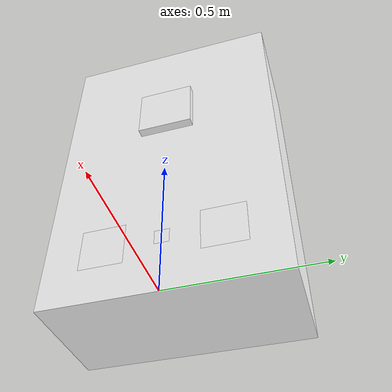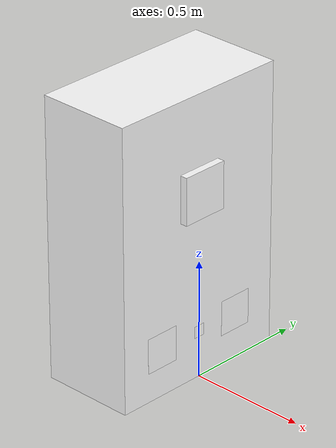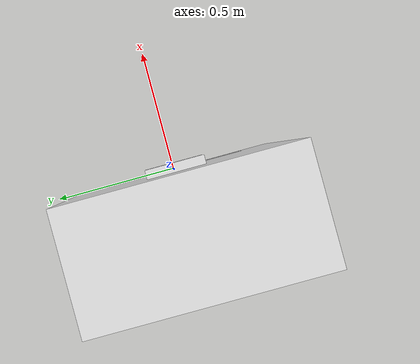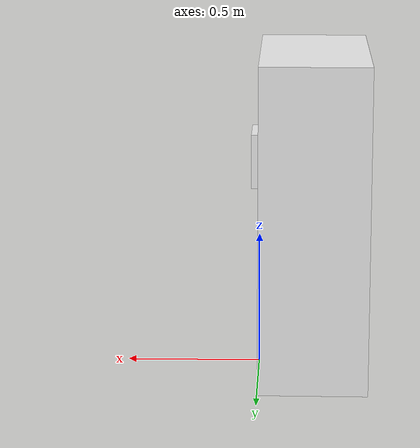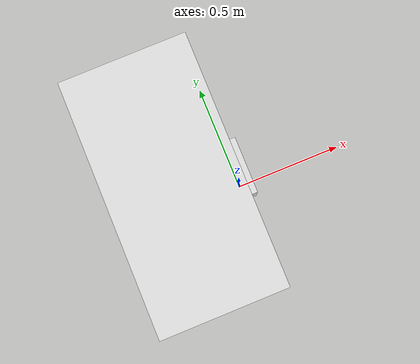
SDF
<?xml version='1.0'?>
<sdf version='1.6'>
  <model name='MockCharger'>
    <allow_auto_disable>0</allow_auto_disable>
    <static>0</static>

    <!-- Charger Base: Offset to make sure origin is at bottom center-->
    <link name='charger_base'>
      <pose> -0.201 0 0.6 0 0 0</pose>

      <collision name='collision'>
        <geometry>
          <box>
            <size>.4 .8 1.2</size>
          </box>
        </geometry>
      </collision>

      <visual name='visual'>
        <geometry>
          <box>
            <size>.4 .8 1.2</size>
          </box>
        </geometry>
        <material>
          <ambient>.7 .7 .5 1</ambient>
          <diffuse>1 1 1 1</diffuse>
          <specular>0.1 0.1 0.1 1</specular>
          <emissive>0 0 0 0</emissive>
        </material>
      </visual>
    </link>

    <!-- Experimental Charging station contact, For ChargingstationPlugin -->
    <link name="charger_contact">
      <pose> 0 0 0.8 0 0 0</pose>

      <light name='charger_led' type='spot'>
        <pose>0.1 0 0.7 0 0 0</pose>
        <cast_shadows>0</cast_shadows>
        <spot>
          <inner_angle>0.6</inner_angle>
          <outer_angle>1</outer_angle>
          <falloff>1</falloff>
        </spot>
      </light>

      <collision name='charger_collision'>
        <max_contacts>2</max_contacts>
        <geometry>
          <box>
            <size>.06 .2 .2</size>
          </box>
        </geometry>
      </collision>

      <visual name='visual'>
        <geometry>
          <box>
            <size>.06 .2 .2</size>
          </box>
        </geometry>
        <material>
          <ambient>.7 0 0 1</ambient>
          <diffuse>1 1 1 1</diffuse>
          <specular>0.1 0.1 0.1 1</specular>
          <emissive>0 0 0 0</emissive>
        </material>
      </visual>

      <!-- Publish contact info of the contact 'Box' to gz transport topic -->
      <sensor name="charger_contactsensor" type="contact">
        <always_on>true</always_on>
        <update_rate>0.5</update_rate>
        <contact>
          <collision>charger_collision</collision>
        </contact>
        <plugin name="charging_station_plugin" filename="libContactPlugin.so"/>
      </sensor>
    </link>

    <!-- Custom charging_station_plugin -->
    <!-- features: retrieve contact info, light indicator, trigger ros srv server -->
    <plugin name='charging_station_plugin' filename='libChargingStationPlugin.so'>
      <enable>true</enable>
      <light>
        <id>charger_contact/charger_led</id>
        <duration>1</duration>
        <interval>1</interval>
        <color>1 0.1 0</color>
      </light>
      <target_color>0 1 0</target_color>
      <reset_timeout>15</reset_timeout>
      <target_collision>mock_docking_robot::body::collision</target_collision>
      <contact_topic>
        /gazebo/default/charger_base1/charger_contact/charger_contactsensor/contacts
      </contact_topic>
    </plugin>

    <!-- Offset -20cm from centre-->
    <include>
      <name>left_aruco_tag</name>
      <uri>model://Fiducial10</uri>
      <pose> 0 -0.2 0.2 0 -1.57 0.0</pose>
      <static>true</static>
    </include>

    <!-- located at centre-->
    <include>
      <name>centre_aruco_tag</name>
      <uri>model://Fiducial20</uri>
      <pose> 0 0 0.2 -0 -1.57 0</pose>
      <static>true</static>
    </include>

    <!-- Offset +20cm from centre-->
    <include>
      <name>right_aruco_tag</name>
      <uri>model://Fiducial11</uri>
      <pose> 0 0.2 0.2 -0 -1.57 0</pose>
      <static>true</static>
    </include>

    <joint name="aruco_tag_joint1" type="fixed">
      <parent>charger_base</parent>
      <child>left_aruco_tag::marker</child>
    </joint>

    <joint name="aruco_tag_joint2" type="fixed">
      <parent>charger_base</parent>
      <child>centre_aruco_tag::marker</child>
    </joint>

    <joint name="aruco_tag_joint3" type="fixed">
      <parent>charger_base</parent>
      <child>right_aruco_tag::marker</child>
    </joint>

    <joint name="charger_contact_joint" type="fixed">
      <parent>charger_base</parent>
      <child>charger_contact</child>
    </joint>
  </model>
</sdf>

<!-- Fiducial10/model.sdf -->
<sdf version='1.6'>
  <model name='Fiducial10'>

    <link name='marker'>
      <pose frame=''>0 0 0 0 0 3.14</pose>
      <visual name='visual'>
        <geometry>
          <box>
            <size>0.15 0.15 1e-5</size>
          </box>
        </geometry>
        <material>
          <script>
            <uri>model://Fiducial10/materials/scripts</uri>
            <uri>model://Fiducial10/materials/textures</uri>
            <name>Fiducial10/Marker</name>
          </script>
          <ambient>1 1 1 1</ambient>
          <diffuse>1 1 1 1</diffuse>
          <specular>0 0 0 1</specular>
          <emissive>1 1 1 0</emissive>
          <shader type='vertex'>
            <normal_map>__default__</normal_map>
          </shader>
        </material>
        <pose frame=''>0 0 0 0 -0 0</pose>
        <cast_shadows>1</cast_shadows>
        <transparency>0</transparency>
      </visual>
    </link>

    <static>1</static>
    <allow_auto_disable>1</allow_auto_disable>

  </model>
</sdf>

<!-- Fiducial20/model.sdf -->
<sdf version='1.6'>
  <model name='Fiducial20'>

    <link name='marker'>
      <pose frame=''>0 0 0 0 0 3.14</pose>
      <visual name='visual'>
        <geometry>
          <box>
            <size>0.05 0.05 1e-5</size>
          </box>
        </geometry>
        <material>
          <script>
            <uri>model://Fiducial20/materials/scripts</uri>
            <uri>model://Fiducial20/materials/textures</uri>
            <name>Fiducial20/Marker</name>
          </script>
          <ambient>1 1 1 1</ambient>
          <diffuse>1 1 1 1</diffuse>
          <specular>0 0 0 1</specular>
          <emissive>1 1 1 0</emissive>
          <shader type='vertex'>
            <normal_map>__default__</normal_map>
          </shader>
        </material>
        <pose frame=''>0 0 0 0 -0 0</pose>
        <cast_shadows>1</cast_shadows>
        <transparency>0</transparency>
      </visual>
    </link>

    <static>1</static>
    <allow_auto_disable>1</allow_auto_disable>

  </model>
</sdf>

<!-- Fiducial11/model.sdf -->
<sdf version='1.6'>
  <model name='Fiducial11'>

    <link name='marker'>
      <pose frame=''>0 0 0 0 0 3.14</pose>
      <visual name='visual'>
        <geometry>
          <box>
            <size>0.15 0.15 1e-5</size>
          </box>
        </geometry>
        <material>
          <script>
            <uri>model://Fiducial11/materials/scripts</uri>
            <uri>model://Fiducial11/materials/textures</uri>
            <name>Fiducial11/Marker</name>
          </script>
          <ambient>1 1 1 1</ambient>
          <diffuse>1 1 1 1</diffuse>
          <specular>0 0 0 1</specular>
          <emissive>1 1 1 0</emissive>
          <shader type='vertex'>
            <normal_map>__default__</normal_map>
          </shader>
        </material>
        <pose frame=''>0 0 0 0 -0 0</pose>
        <cast_shadows>1</cast_shadows>
        <transparency>0</transparency>
      </visual>
    </link>

    <static>1</static>
    <allow_auto_disable>1</allow_auto_disable>

  </model>
</sdf>
